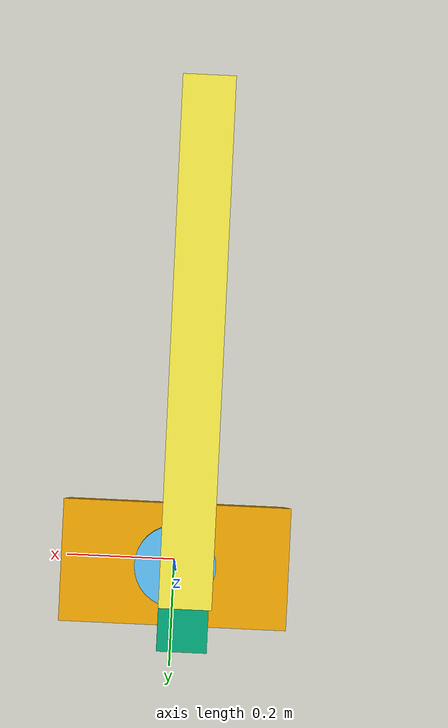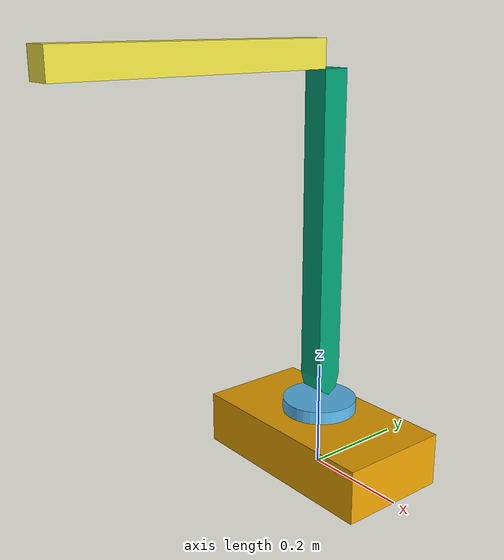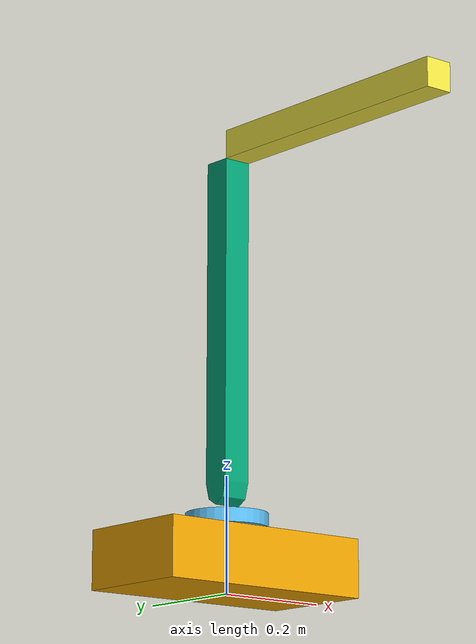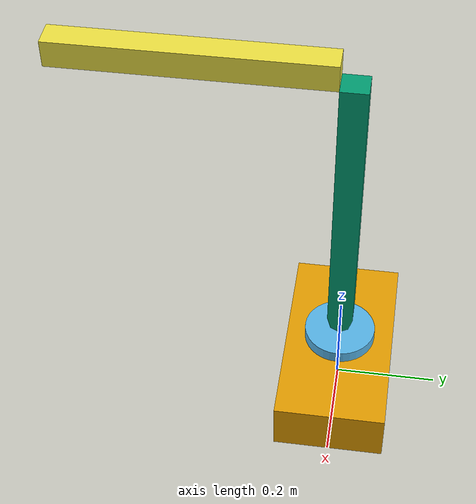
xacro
<?xml version="1.0"?>
<robot xmlns:xacro="http://www.ros.org/wiki/xacro" name="stick_rm">
    <xacro:arg name="initial_positions_file" default="initial_positions.yaml" />

    <!-- Import stick_rm urdf file -->
    <xacro:include filename="$(find stick_rm_description)/urdf/unnamed.urdf" />

    <!-- Import control_xacro -->
    <xacro:include filename="stick_rm.ros2_control.xacro" />

    <xacro:stick_rm_ros2_control name="FakeSystem" initial_positions_file="$(arg initial_positions_file)"/>

</robot>

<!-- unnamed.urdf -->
<robot name="stick_rm">

  <!-- ================= LINKS ================= -->

  <link name="body_link">
    <inertial>
      <mass value="2.0"/>
      <origin xyz="0 0 0"/>
      <inertia ixx="0.02" ixy="0" ixz="0" iyy="0.02" iyz="0" izz="0.02"/>
    </inertial>
    <collision>
      <geometry>
        <mesh filename="package://stick_rm_description/meshes/stl/Cube.017.stl"/>
      </geometry>
    </collision>
    <visual>
      <geometry>
        <mesh filename="package://stick_rm_description/meshes/stl/Cube.010.stl"/>
      </geometry>
    </visual>
  </link>

  <link name="swivel_link">
    <inertial>
      <mass value="1.0"/>
      <origin xyz="0 0 0"/>
      <inertia ixx="0.01" ixy="0" ixz="0" iyy="0.01" iyz="0" izz="0.01"/>
    </inertial>
    <collision>
      <geometry>
        <mesh filename="package://stick_rm_description/meshes/stl/Circle.002.stl" scale="0.12364 0.12364 0.12364"/>
      </geometry>
    </collision>
    <visual>
      <geometry>
        <mesh filename="package://stick_rm_description/meshes/stl/Circle.001.stl" scale="0.12364 0.12364 0.12364"/>
      </geometry>
    </visual>
  </link>

  <link name="link1_link">
    <inertial>
      <mass value="1.0"/>
      <origin xyz="0 0 0"/>
      <inertia ixx="0.01" ixy="0" ixz="0" iyy="0.01" iyz="0" izz="0.01"/>
    </inertial>
    <collision>
      <geometry>
        <mesh filename="package://stick_rm_description/meshes/stl/Cube.016.stl"/>
      </geometry>
    </collision>
    <visual>
      <geometry>
        <mesh filename="package://stick_rm_description/meshes/stl/Cube.003.stl"/>
      </geometry>
    </visual>
  </link>

  <link name="link2_link">
    <inertial>
      <mass value="0.8"/>
      <origin xyz="0 0 0"/>
      <inertia ixx="0.008" ixy="0" ixz="0" iyy="0.008" iyz="0" izz="0.008"/>
    </inertial>
    <collision>
      <geometry>
        <mesh filename="package://stick_rm_description/meshes/stl/Cube.015.stl"/>
      </geometry>
    </collision>
    <visual>
      <geometry>
        <mesh filename="package://stick_rm_description/meshes/stl/Cube.004.stl"/>
      </geometry>
    </visual>
  </link>

  <!-- ================= JOINTS ================= -->

  <joint name="swivel_link_joint" type="revolute">
    <origin xyz="0 0 0.1244" rpy="0 0 0"/>
    <parent link="body_link"/>
    <child link="swivel_link"/>
    <axis xyz="0 0 1"/>
    <limit lower="-1.57" upper="1.57" effort="10" velocity="1.0"/>
  </joint>

  <joint name="link1_link_joint" type="revolute">
    <origin xyz="0 0 0.02551" rpy="0 0 0"/>
    <parent link="swivel_link"/>
    <child link="link1_link"/>
    <axis xyz="1 0 0"/>
    <limit lower="-0.5" upper="1.2" effort="10" velocity="1.0"/>
  </joint>

  <joint name="link2_link_joint" type="revolute">
    <origin xyz="0 -0.025 0.6" rpy="0 0 0"/>
    <parent link="link1_link"/>
    <child link="link2_link"/>
    <axis xyz="1 0 0"/>
    <limit lower="-1.5" upper="1.1" effort="10" velocity="1.0"/>
  </joint>

</robot>
